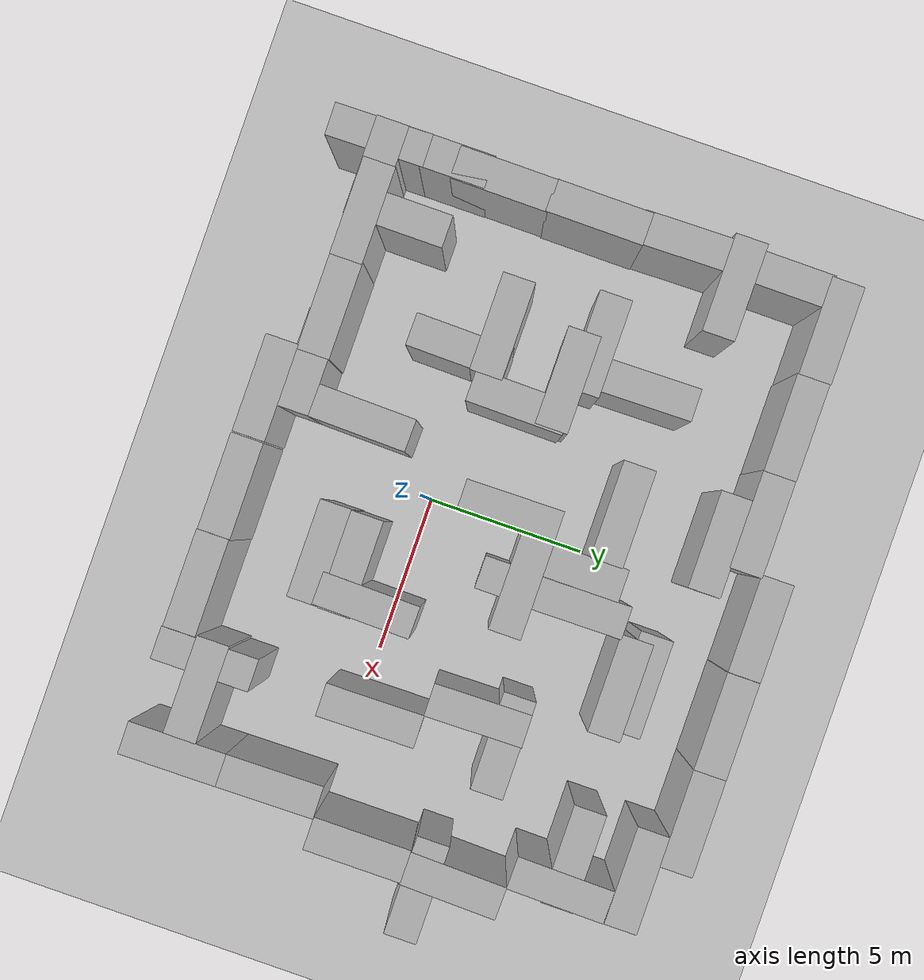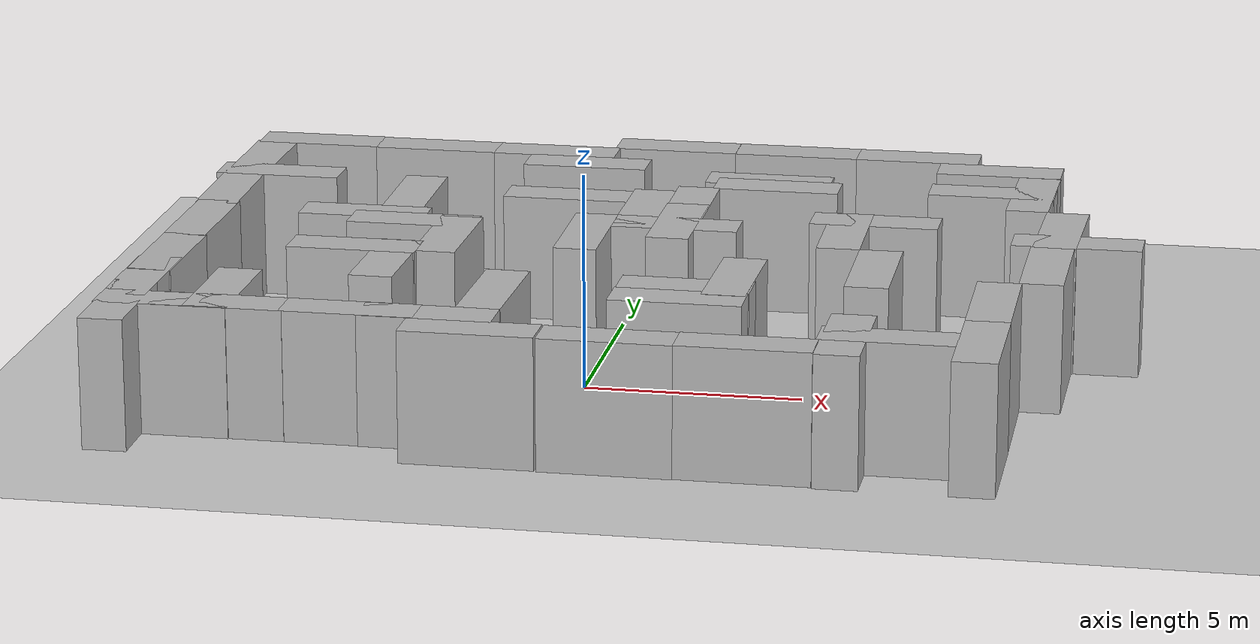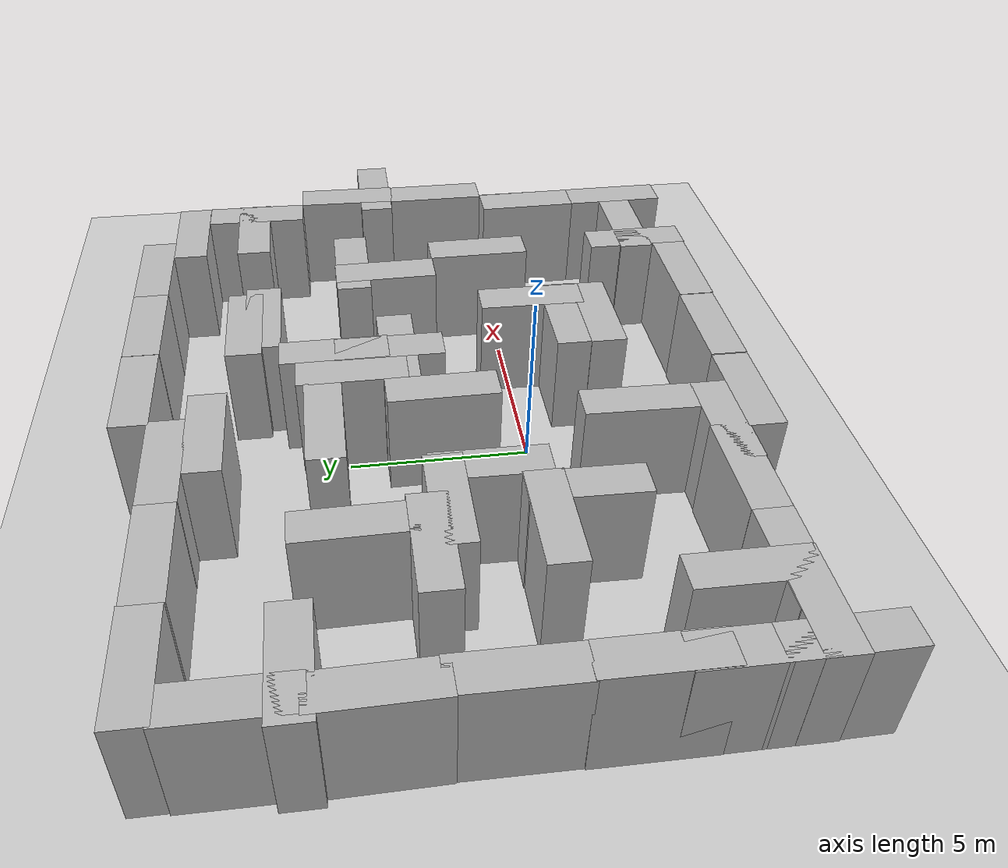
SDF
<sdf version="1.7">
 <world name="default">
  <light name="sun" type="directional">
   <pose>0 0 10 0 -0 0</pose>
   <diffuse>0.8 0.8 0.8 1</diffuse>
   <specular>0.2 0.2 0.2 1</specular>
   <attenuation>
    <range>1000</range>
    <constant>0.9</constant>
    <linear>0.01</linear>
    <quadratic>0.001</quadratic>
   </attenuation>
   <direction>-0.5 0.1 -0.9</direction>
   <spot><inner_angle>0</inner_angle><outer_angle>0</outer_angle><falloff>0</falloff></spot>
  </light>
  <model name="ground_plane">
   <static>1</static>
   <link name="link">
    <collision name="collision">
     <geometry><plane><normal>0 0 1</normal><size>100 100</size></plane></geometry>
     <surface><friction><ode><mu>100</mu><mu2>50</mu2></ode></friction></surface>
    </collision>
    <visual name="visual">
     <cast_shadows>0</cast_shadows>
     <geometry><plane><normal>0 0 1</normal><size>100 100</size></plane></geometry>
     <material>
      <script><uri>file://media/materials/scripts/gazebo.material</uri><name>Gazebo/Grey</name></script>
     </material>
    </visual>
   </link>
  </model>
  <gravity>0 0 -9.8</gravity>
  <magnetic_field>6e-06 2.3e-05 -4.2e-05</magnetic_field>
  <atmosphere type="adiabatic"/>
  <physics type="ode">
   <max_step_size>0.001</max_step_size>
   <real_time_factor>1</real_time_factor>
   <real_time_update_rate>1000</real_time_update_rate>
  </physics>
  <scene><ambient>0.4 0.4 0.4 1</ambient><background>0.7 0.7 0.7 1</background><shadows>1</shadows></scene>
  <spherical_coordinates>
   <surface_model>EARTH_WGS84</surface_model>
   <latitude_deg>0</latitude_deg>
   <longitude_deg>0</longitude_deg>
   <elevation>0</elevation>
   <heading_deg>0</heading_deg>
  </spherical_coordinates>
  <model name="brick_box_3x1x3">
   <static>1</static>
   <link name="chassis">
    <pose>0 0 1.5 0 -0 0</pose>
    <collision name="collision"><geometry><box><size>3 1 3</size></box></geometry></collision>
    <visual name="visual">
     <geometry><mesh><uri>model://brick_box_3x1x3/meshes/simple_box.dae</uri><scale>3 1 3</scale></mesh></geometry>
     <material>
      <script>
       <uri>model://brick_box_3x1x3/materials/scripts</uri>
       <uri>model://brick_box_3x1x3/materials/textures</uri>
       <name>BrickBox/Diffuse</name>
      </script>
     </material>
    </visual>
   </link>
   <pose>-8.46523 9.55339 0 0 -0 0</pose>
  </model>
  <model name="brick_box_3x1x3_0">
   <static>1</static>
   <link name="chassis">
    <pose>0 0 1.5 0 -0 0</pose>
    <collision name="collision"><geometry><box><size>3 1 3</size></box></geometry></collision>
    <visual name="visual">
     <geometry><mesh><uri>model://brick_box_3x1x3/meshes/simple_box.dae</uri><scale>3 1 3</scale></mesh></geometry>
     <material>
      <script>
       <uri>model://brick_box_3x1x3/materials/scripts</uri>
       <uri>model://brick_box_3x1x3/materials/textures</uri>
       <name>BrickBox/Diffuse</name>
      </script>
     </material>
    </visual>
   </link>
   <pose>-5.472 9.52057 0 0 -0 0</pose>
  </model>
  <model name="brick_box_3x1x3_1">
   <static>1</static>
   <link name="chassis">
    <pose>0 0 1.5 0 -0 0</pose>
    <collision name="collision"><geometry><box><size>3 1 3</size></box></geometry></collision>
    <visual name="visual">
     <geometry><mesh><uri>model://brick_box_3x1x3/meshes/simple_box.dae</uri><scale>3 1 3</scale></mesh></geometry>
     <material>
      <script>
       <uri>model://brick_box_3x1x3/materials/scripts</uri>
       <uri>model://brick_box_3x1x3/materials/textures</uri>
       <name>BrickBox/Diffuse</name>
      </script>
     </material>
    </visual>
   </link>
   <pose>-2.48829 9.51088 0 0 -0 0</pose>
  </model>
  <model name="brick_box_3x1x3_2">
   <static>1</static>
   <link name="chassis">
    <pose>0 0 1.5 0 -0 0</pose>
    <collision name="collision"><geometry><box><size>3 1 3</size></box></geometry></collision>
    <visual name="visual">
     <geometry><mesh><uri>model://brick_box_3x1x3/meshes/simple_box.dae</uri><scale>3 1 3</scale></mesh></geometry>
     <material>
      <script>
       <uri>model://brick_box_3x1x3/materials/scripts</uri>
       <uri>model://brick_box_3x1x3/materials/textures</uri>
       <name>BrickBox/Diffuse</name>
      </script>
     </material>
    </visual>
   </link>
   <pose>0.395477 10.463 0 0 -0 0</pose>
  </model>
  <model name="brick_box_3x1x3_3">
   <static>1</static>
   <link name="chassis">
    <pose>0 0 1.5 0 -0 0</pose>
    <collision name="collision"><geometry><box><size>3 1 3</size></box></geometry></collision>
    <visual name="visual">
     <geometry><mesh><uri>model://brick_box_3x1x3/meshes/simple_box.dae</uri><scale>3 1 3</scale></mesh></geometry>
     <material>
      <script>
       <uri>model://brick_box_3x1x3/materials/scripts</uri>
       <uri>model://brick_box_3x1x3/materials/textures</uri>
       <name>BrickBox/Diffuse</name>
      </script>
     </material>
    </visual>
   </link>
   <pose>3.40123 10.4557 0 0 -0 0</pose>
  </model>
  <model name="brick_box_3x1x3_4">
   <static>1</static>
   <link name="chassis">
    <pose>0 0 1.5 0 -0 0</pose>
    <collision name="collision"><geometry><box><size>3 1 3</size></box></geometry></collision>
    <visual name="visual">
     <geometry><mesh><uri>model://brick_box_3x1x3/meshes/simple_box.dae</uri><scale>3 1 3</scale></mesh></geometry>
     <material>
      <script>
       <uri>model://brick_box_3x1x3/materials/scripts</uri>
       <uri>model://brick_box_3x1x3/materials/textures</uri>
       <name>BrickBox/Diffuse</name>
      </script>
     </material>
    </visual>
   </link>
   <pose>6.38875 10.456 0 0 -0 0</pose>
  </model>
  <model name="brick_box_3x1x3_5">
   <static>1</static>
   <link name="chassis">
    <pose>0 0 1.5 0 -0 0</pose>
    <collision name="collision"><geometry><box><size>3 1 3</size></box></geometry></collision>
    <visual name="visual">
     <geometry><mesh><uri>model://brick_box_3x1x3/meshes/simple_box.dae</uri><scale>3 1 3</scale></mesh></geometry>
     <material>
      <script>
       <uri>model://brick_box_3x1x3/materials/scripts</uri>
       <uri>model://brick_box_3x1x3/materials/textures</uri>
       <name>BrickBox/Diffuse</name>
      </script>
     </material>
    </visual>
   </link>
   <pose>8.48988 9.46786 0 0 -0 0</pose>
  </model>
  <model name="brick_box_3x1x3_6">
   <static>1</static>
   <link name="chassis">
    <pose>0 0 1.5 0 -0 0</pose>
    <collision name="collision"><geometry><box><size>3 1 3</size></box></geometry></collision>
    <visual name="visual">
     <geometry><mesh><uri>model://brick_box_3x1x3/meshes/simple_box.dae</uri><scale>3 1 3</scale></mesh></geometry>
     <material>
      <script>
       <uri>model://brick_box_3x1x3/materials/scripts</uri>
       <uri>model://brick_box_3x1x3/materials/textures</uri>
       <name>BrickBox/Diffuse</name>
      </script>
     </material>
    </visual>
   </link>
   <pose>-7.28014 -4.47821 0 0 -0 0</pose>
  </model>
  <model name="brick_box_3x1x3_7">
   <static>1</static>
   <link name="chassis">
    <pose>0 0 1.5 0 -0 0</pose>
    <collision name="collision"><geometry><box><size>3 1 3</size></box></geometry></collision>
    <visual name="visual">
     <geometry><mesh><uri>model://brick_box_3x1x3/meshes/simple_box.dae</uri><scale>3 1 3</scale></mesh></geometry>
     <material>
      <script>
       <uri>model://brick_box_3x1x3/materials/scripts</uri>
       <uri>model://brick_box_3x1x3/materials/textures</uri>
       <name>BrickBox/Diffuse</name>
      </script>
     </material>
    </visual>
   </link>
   <pose>-8.73293 6.492 0 0 -0 0</pose>
  </model>
  <model name="brick_box_3x1x3_8">
   <static>1</static>
   <link name="chassis">
    <pose>0 0 1.5 0 -0 0</pose>
    <collision name="collision"><geometry><box><size>3 1 3</size></box></geometry></collision>
    <visual name="visual">
     <geometry><mesh><uri>model://brick_box_3x1x3/meshes/simple_box.dae</uri><scale>3 1 3</scale></mesh></geometry>
     <material>
      <script>
       <uri>model://brick_box_3x1x3/materials/scripts</uri>
       <uri>model://brick_box_3x1x3/materials/textures</uri>
       <name>BrickBox/Diffuse</name>
      </script>
     </material>
    </visual>
   </link>
   <pose>-8.53665 -4.49715 0 0 -0 0</pose>
  </model>
  <model name="brick_box_3x1x3_9">
   <static>1</static>
   <link name="chassis">
    <pose>0 0 1.5 0 -0 0</pose>
    <collision name="collision"><geometry><box><size>3 1 3</size></box></geometry></collision>
    <visual name="visual">
     <geometry><mesh><uri>model://brick_box_3x1x3/meshes/simple_box.dae</uri><scale>3 1 3</scale></mesh></geometry>
     <material>
      <script>
       <uri>model://brick_box_3x1x3/materials/scripts</uri>
       <uri>model://brick_box_3x1x3/materials/textures</uri>
       <name>BrickBox/Diffuse</name>
      </script>
     </material>
    </visual>
   </link>
   <pose>-5.44476 0.47068 0 0 -0 0</pose>
  </model>
  <model name="brick_box_3x1x3_10">
   <static>1</static>
   <link name="chassis">
    <pose>0 0 1.5 0 -0 0</pose>
    <collision name="collision"><geometry><box><size>3 1 3</size></box></geometry></collision>
    <visual name="visual">
     <geometry><mesh><uri>model://brick_box_3x1x3/meshes/simple_box.dae</uri><scale>3 1 3</scale></mesh></geometry>
     <material>
      <script>
       <uri>model://brick_box_3x1x3/materials/scripts</uri>
       <uri>model://brick_box_3x1x3/materials/textures</uri>
       <name>BrickBox/Diffuse</name>
      </script>
     </material>
    </visual>
   </link>
   <pose>4.53237 -5.49293 0.01205 0 -0 0</pose>
  </model>
  <model name="brick_box_3x1x3_11">
   <static>1</static>
   <link name="chassis">
    <pose>0 0 1.5 0 -0 0</pose>
    <collision name="collision"><geometry><box><size>3 1 3</size></box></geometry></collision>
    <visual name="visual">
     <geometry><mesh><uri>model://brick_box_3x1x3/meshes/simple_box.dae</uri><scale>3 1 3</scale></mesh></geometry>
     <material>
      <script>
       <uri>model://brick_box_3x1x3/materials/scripts</uri>
       <uri>model://brick_box_3x1x3/materials/textures</uri>
       <name>BrickBox/Diffuse</name>
      </script>
     </material>
    </visual>
   </link>
   <pose>1.55384 -5.47393 -0.00317 0 -0 0</pose>
  </model>
  <model name="brick_box_3x1x3_12">
   <static>1</static>
   <link name="chassis">
    <pose>0 0 1.5 0 -0 0</pose>
    <collision name="collision"><geometry><box><size>3 1 3</size></box></geometry></collision>
    <visual name="visual">
     <geometry><mesh><uri>model://brick_box_3x1x3/meshes/simple_box.dae</uri><scale>3 1 3</scale></mesh></geometry>
     <material>
      <script>
       <uri>model://brick_box_3x1x3/materials/scripts</uri>
       <uri>model://brick_box_3x1x3/materials/textures</uri>
       <name>BrickBox/Diffuse</name>
      </script>
     </material>
    </visual>
   </link>
   <pose>-4.58886 2.78847 0 0 -0 0</pose>
  </model>
  <model name="brick_box_3x1x3_13">
   <static>1</static>
   <link name="chassis">
    <pose>0 0 1.5 0 -0 0</pose>
    <collision name="collision"><geometry><box><size>3 1 3</size></box></geometry></collision>
    <visual name="visual">
     <geometry><mesh><uri>model://brick_box_3x1x3/meshes/simple_box.dae</uri><scale>3 1 3</scale></mesh></geometry>
     <material>
      <script>
       <uri>model://brick_box_3x1x3/materials/scripts</uri>
       <uri>model://brick_box_3x1x3/materials/textures</uri>
       <name>BrickBox/Diffuse</name>
      </script>
     </material>
    </visual>
   </link>
   <pose>7.46092 -4.46594 0 0 -0 0</pose>
  </model>
  <model name="brick_box_3x1x3_14">
   <static>1</static>
   <link name="chassis">
    <pose>0 0 1.5 0 -0 0</pose>
    <collision name="collision"><geometry><box><size>3 1 3</size></box></geometry></collision>
    <visual name="visual">
     <geometry><mesh><uri>model://brick_box_3x1x3/meshes/simple_box.dae</uri><scale>3 1 3</scale></mesh></geometry>
     <material>
      <script>
       <uri>model://brick_box_3x1x3/materials/scripts</uri>
       <uri>model://brick_box_3x1x3/materials/textures</uri>
       <name>BrickBox/Diffuse</name>
      </script>
     </material>
    </visual>
   </link>
   <pose>-1.48677 -5.45639 0 0 -0 0</pose>
  </model>
  <model name="brick_box_3x1x3_15">
   <static>1</static>
   <link name="chassis">
    <pose>0 0 1.5 0 -0 0</pose>
    <collision name="collision"><geometry><box><size>3 1 3</size></box></geometry></collision>
    <visual name="visual">
     <geometry><mesh><uri>model://brick_box_3x1x3/meshes/simple_box.dae</uri><scale>3 1 3</scale></mesh></geometry>
     <material>
      <script>
       <uri>model://brick_box_3x1x3/materials/scripts</uri>
       <uri>model://brick_box_3x1x3/materials/textures</uri>
       <name>BrickBox/Diffuse</name>
      </script>
     </material>
    </visual>
   </link>
   <pose>-5.87977 3.3047 0 0 -0 0</pose>
  </model>
  <model name="brick_box_3x1x3_16">
   <static>1</static>
   <link name="chassis">
    <pose>0 0 1.5 0 -0 0</pose>
    <collision name="collision"><geometry><box><size>3 1 3</size></box></geometry></collision>
    <visual name="visual">
     <geometry><mesh><uri>model://brick_box_3x1x3/meshes/simple_box.dae</uri><scale>3 1 3</scale></mesh></geometry>
     <material>
      <script>
       <uri>model://brick_box_3x1x3/materials/scripts</uri>
       <uri>model://brick_box_3x1x3/materials/textures</uri>
       <name>BrickBox/Diffuse</name>
      </script>
     </material>
    </visual>
   </link>
   <pose>-1.43176 5.58738 0 0 -0 0</pose>
  </model>
  <model name="brick_box_3x1x3_17">
   <static>1</static>
   <link name="chassis">
    <pose>0 0 1.5 0 -0 0</pose>
    <collision name="collision"><geometry><box><size>3 1 3</size></box></geometry></collision>
    <visual name="visual">
     <geometry><mesh><uri>model://brick_box_3x1x3/meshes/simple_box.dae</uri><scale>3 1 3</scale></mesh></geometry>
     <material>
      <script>
       <uri>model://brick_box_3x1x3/materials/scripts</uri>
       <uri>model://brick_box_3x1x3/materials/textures</uri>
       <name>BrickBox/Diffuse</name>
      </script>
     </material>
    </visual>
   </link>
   <pose>-3.52779 1.66214 0 0 -0 1.55943</pose>
  </model>
  <model name="brick_box_3x1x3_18">
   <static>1</static>
   <link name="chassis">
    <pose>0 0 1.5 0 -0 0</pose>
    <collision name="collision"><geometry><box><size>3 1 3</size></box></geometry></collision>
    <visual name="visual">
     <geometry><mesh><uri>model://brick_box_3x1x3/meshes/simple_box.dae</uri><scale>3 1 3</scale></mesh></geometry>
     <material>
      <script>
       <uri>model://brick_box_3x1x3/materials/scripts</uri>
       <uri>model://brick_box_3x1x3/materials/textures</uri>
       <name>BrickBox/Diffuse</name>
      </script>
     </material>
    </visual>
   </link>
   <pose>5.4779 3.52288 0 0 -0 1.58625</pose>
  </model>
  <model name="brick_box_3x1x3_19">
   <static>1</static>
   <link name="chassis">
    <pose>0 0 1.5 0 -0 0</pose>
    <collision name="collision"><geometry><box><size>3 1 3</size></box></geometry></collision>
    <visual name="visual">
     <geometry><mesh><uri>model://brick_box_3x1x3/meshes/simple_box.dae</uri><scale>3 1 3</scale></mesh></geometry>
     <material>
      <script>
       <uri>model://brick_box_3x1x3/materials/scripts</uri>
       <uri>model://brick_box_3x1x3/materials/textures</uri>
       <name>BrickBox/Diffuse</name>
      </script>
     </material>
    </visual>
   </link>
   <pose>-0.432442 2.4609 -9e-06 9e-06 0.000951 -1.56124</pose>
  </model>
  <model name="brick_box_3x1x3_20">
   <static>1</static>
   <link name="chassis">
    <pose>0 0 1.5 0 -0 0</pose>
    <collision name="collision"><geometry><box><size>3 1 3</size></box></geometry></collision>
    <visual name="visual">
     <geometry><mesh><uri>model://brick_box_3x1x3/meshes/simple_box.dae</uri><scale>3 1 3</scale></mesh></geometry>
     <material>
      <script>
       <uri>model://brick_box_3x1x3/materials/scripts</uri>
       <uri>model://brick_box_3x1x3/materials/textures</uri>
       <name>BrickBox/Diffuse</name>
      </script>
     </material>
    </visual>
   </link>
   <pose>9.45439 -4.51841 0 0 -0 1.57734</pose>
  </model>
  <model name="brick_box_3x1x3_21">
   <static>1</static>
   <link name="chassis">
    <pose>0 0 1.5 0 -0 0</pose>
    <collision name="collision"><geometry><box><size>3 1 3</size></box></geometry></collision>
    <visual name="visual">
     <geometry><mesh><uri>model://brick_box_3x1x3/meshes/simple_box.dae</uri><scale>3 1 3</scale></mesh></geometry>
     <material>
      <script>
       <uri>model://brick_box_3x1x3/materials/scripts</uri>
       <uri>model://brick_box_3x1x3/materials/textures</uri>
       <name>BrickBox/Diffuse</name>
      </script>
     </material>
    </visual>
   </link>
   <pose>9.42032 -1.5245 0 0 -0 1.58366</pose>
  </model>
  <model name="brick_box_3x1x3_22">
   <static>1</static>
   <link name="chassis">
    <pose>0 0 1.5 0 -0 0</pose>
    <collision name="collision"><geometry><box><size>3 1 3</size></box></geometry></collision>
    <visual name="visual">
     <geometry><mesh><uri>model://brick_box_3x1x3/meshes/simple_box.dae</uri><scale>3 1 3</scale></mesh></geometry>
     <material>
      <script>
       <uri>model://brick_box_3x1x3/materials/scripts</uri>
       <uri>model://brick_box_3x1x3/materials/textures</uri>
       <name>BrickBox/Diffuse</name>
      </script>
     </material>
    </visual>
   </link>
   <pose>10.3225 1.48345 0 0 -0 1.5723</pose>
  </model>
  <model name="brick_box_3x1x3_23">
   <static>1</static>
   <link name="chassis">
    <pose>0 0 1.5 0 -0 0</pose>
    <collision name="collision"><geometry><box><size>3 1 3</size></box></geometry></collision>
    <visual name="visual">
     <geometry><mesh><uri>model://brick_box_3x1x3/meshes/simple_box.dae</uri><scale>3 1 3</scale></mesh></geometry>
     <material>
      <script>
       <uri>model://brick_box_3x1x3/materials/scripts</uri>
       <uri>model://brick_box_3x1x3/materials/textures</uri>
       <name>BrickBox/Diffuse</name>
      </script>
     </material>
    </visual>
   </link>
   <pose>10.3931 4.44675 0 0 -0 1.54705</pose>
  </model>
  <model name="brick_box_3x1x3_24">
   <static>1</static>
   <link name="chassis">
    <pose>0 0 1.5 0 -0 0</pose>
    <collision name="collision"><geometry><box><size>3 1 3</size></box></geometry></collision>
    <visual name="visual">
     <geometry><mesh><uri>model://brick_box_3x1x3/meshes/simple_box.dae</uri><scale>3 1 3</scale></mesh></geometry>
     <material>
      <script>
       <uri>model://brick_box_3x1x3/materials/scripts</uri>
       <uri>model://brick_box_3x1x3/materials/textures</uri>
       <name>BrickBox/Diffuse</name>
      </script>
     </material>
    </visual>
   </link>
   <pose>9.47912 7.45795 0 0 -0 1.55575</pose>
  </model>
  <model name="brick_box_3x1x3_25">
   <static>1</static>
   <link name="chassis">
    <pose>0 0 1.5 0 -0 0</pose>
    <collision name="collision"><geometry><box><size>3 1 3</size></box></geometry></collision>
    <visual name="visual">
     <geometry><mesh><uri>model://brick_box_3x1x3/meshes/simple_box.dae</uri><scale>3 1 3</scale></mesh></geometry>
     <material>
      <script>
       <uri>model://brick_box_3x1x3/materials/scripts</uri>
       <uri>model://brick_box_3x1x3/materials/textures</uri>
       <name>BrickBox/Diffuse</name>
      </script>
     </material>
    </visual>
   </link>
   <pose>-7.50483 -3.43801 0 0 -0 1.56732</pose>
  </model>
  <model name="brick_box_3x1x3_26">
   <static>1</static>
   <link name="chassis">
    <pose>0 0 1.5 0 -0 0</pose>
    <collision name="collision"><geometry><box><size>3 1 3</size></box></geometry></collision>
    <visual name="visual">
     <geometry><mesh><uri>model://brick_box_3x1x3/meshes/simple_box.dae</uri><scale>3 1 3</scale></mesh></geometry>
     <material>
      <script>
       <uri>model://brick_box_3x1x3/materials/scripts</uri>
       <uri>model://brick_box_3x1x3/materials/textures</uri>
       <name>BrickBox/Diffuse</name>
      </script>
     </material>
    </visual>
   </link>
   <pose>-9.51453 -4.75402 0 0 -0 1.585</pose>
  </model>
  <model name="brick_box_3x1x3_27">
   <static>1</static>
   <link name="chassis">
    <pose>0 0 1.5 0 -0 0</pose>
    <collision name="collision"><geometry><box><size>3 1 3</size></box></geometry></collision>
    <visual name="visual">
     <geometry><mesh><uri>model://brick_box_3x1x3/meshes/simple_box.dae</uri><scale>3 1 3</scale></mesh></geometry>
     <material>
      <script>
       <uri>model://brick_box_3x1x3/materials/scripts</uri>
       <uri>model://brick_box_3x1x3/materials/textures</uri>
       <name>BrickBox/Diffuse</name>
      </script>
     </material>
    </visual>
   </link>
   <pose>-9.54809 -0.899517 0.002837 0.016451 0.002304 1.56624</pose>
  </model>
  <model name="brick_box_3x1x3_28">
   <static>1</static>
   <link name="chassis">
    <pose>0 0 1.5 0 -0 0</pose>
    <collision name="collision"><geometry><box><size>3 1 3</size></box></geometry></collision>
    <visual name="visual">
     <geometry><mesh><uri>model://brick_box_3x1x3/meshes/simple_box.dae</uri><scale>3 1 3</scale></mesh></geometry>
     <material>
      <script>
       <uri>model://brick_box_3x1x3/materials/scripts</uri>
       <uri>model://brick_box_3x1x3/materials/textures</uri>
       <name>BrickBox/Diffuse</name>
      </script>
     </material>
    </visual>
   </link>
   <pose>-9.49995 2.05036 0 0 -0 1.56412</pose>
  </model>
  <model name="brick_box_3x1x3_29">
   <static>1</static>
   <link name="chassis">
    <pose>0 0 1.5 0 -0 0</pose>
    <collision name="collision"><geometry><box><size>3 1 3</size></box></geometry></collision>
    <visual name="visual">
     <geometry><mesh><uri>model://brick_box_3x1x3/meshes/simple_box.dae</uri><scale>3 1 3</scale></mesh></geometry>
     <material>
      <script>
       <uri>model://brick_box_3x1x3/materials/scripts</uri>
       <uri>model://brick_box_3x1x3/materials/textures</uri>
       <name>BrickBox/Diffuse</name>
      </script>
     </material>
    </visual>
   </link>
   <pose>-9.53782 4.81396 0 0 -0 1.58649</pose>
  </model>
  <model name="brick_box_3x1x3_30">
   <static>1</static>
   <link name="chassis">
    <pose>0 0 1.5 0 -0 0</pose>
    <collision name="collision"><geometry><box><size>3 1 3</size></box></geometry></collision>
    <visual name="visual">
     <geometry><mesh><uri>model://brick_box_3x1x3/meshes/simple_box.dae</uri><scale>3 1 3</scale></mesh></geometry>
     <material>
      <script>
       <uri>model://brick_box_3x1x3/materials/scripts</uri>
       <uri>model://brick_box_3x1x3/materials/textures</uri>
       <name>BrickBox/Diffuse</name>
      </script>
     </material>
    </visual>
   </link>
   <pose>-9.51638 7.65972 0 0 -0 1.56571</pose>
  </model>
  <model name="brick_box_3x1x3_31">
   <static>1</static>
   <link name="chassis">
    <pose>0 0 1.5 0 -0 0</pose>
    <collision name="collision"><geometry><box><size>3 1 3</size></box></geometry></collision>
    <visual name="visual">
     <geometry><mesh><uri>model://brick_box_3x1x3/meshes/simple_box.dae</uri><scale>3 1 3</scale></mesh></geometry>
     <material>
      <script>
       <uri>model://brick_box_3x1x3/materials/scripts</uri>
       <uri>model://brick_box_3x1x3/materials/textures</uri>
       <name>BrickBox/Diffuse</name>
      </script>
     </material>
    </visual>
   </link>
   <pose>-9.53488 -2.84491 0 0 -0 1.57198</pose>
  </model>
  <model name="brick_box_3x1x3_32">
   <static>1</static>
   <link name="chassis">
    <pose>0 0 1.5 0 -0 0</pose>
    <collision name="collision"><geometry><box><size>3 1 3</size></box></geometry></collision>
    <visual name="visual">
     <geometry><mesh><uri>model://brick_box_3x1x3/meshes/simple_box.dae</uri><scale>3 1 3</scale></mesh></geometry>
     <material>
      <script>
       <uri>model://brick_box_3x1x3/materials/scripts</uri>
       <uri>model://brick_box_3x1x3/materials/textures</uri>
       <name>BrickBox/Diffuse</name>
      </script>
     </material>
    </visual>
   </link>
   <pose>2.55085 -1.42573 0 0 -0 0</pose>
  </model>
  <model name="brick_box_3x1x3_33">
   <static>1</static>
   <link name="chassis">
    <pose>0 0 1.5 0 -0 0</pose>
    <collision name="collision"><geometry><box><size>3 1 3</size></box></geometry></collision>
    <visual name="visual">
     <geometry><mesh><uri>model://brick_box_3x1x3/meshes/simple_box.dae</uri><scale>3 1 3</scale></mesh></geometry>
     <material>
      <script>
       <uri>model://brick_box_3x1x3/materials/scripts</uri>
       <uri>model://brick_box_3x1x3/materials/textures</uri>
       <name>BrickBox/Diffuse</name>
      </script>
     </material>
    </visual>
   </link>
   <pose>-4.47913 -0.512061 0 0 -0 1.55582</pose>
  </model>
  <model name="brick_box_3x1x3_34">
   <static>1</static>
   <link name="chassis">
    <pose>0 0 1.5 0 -0 0</pose>
    <collision name="collision"><geometry><box><size>3 1 3</size></box></geometry></collision>
    <visual name="visual">
     <geometry><mesh><uri>model://brick_box_3x1x3/meshes/simple_box.dae</uri><scale>3 1 3</scale></mesh></geometry>
     <material>
      <script>
       <uri>model://brick_box_3x1x3/materials/scripts</uri>
       <uri>model://brick_box_3x1x3/materials/textures</uri>
       <name>BrickBox/Diffuse</name>
      </script>
     </material>
    </visual>
   </link>
   <pose>-4.35633 -4.47256 0 0 -0 0</pose>
  </model>
  <model name="brick_box_3x1x3_35">
   <static>1</static>
   <link name="chassis">
    <pose>0 0 1.5 0 -0 0</pose>
    <collision name="collision"><geometry><box><size>3 1 3</size></box></geometry></collision>
    <visual name="visual">
     <geometry><mesh><uri>model://brick_box_3x1x3/meshes/simple_box.dae</uri><scale>3 1 3</scale></mesh></geometry>
     <material>
      <script>
       <uri>model://brick_box_3x1x3/materials/scripts</uri>
       <uri>model://brick_box_3x1x3/materials/textures</uri>
       <name>BrickBox/Diffuse</name>
      </script>
     </material>
    </visual>
   </link>
   <pose>1.5103 3.47128 0 0 -0 0</pose>
  </model>
  <model name="brick_box_3x1x3_36">
   <static>1</static>
   <link name="chassis">
    <pose>0 0 1.5 0 -0 0</pose>
    <collision name="collision"><geometry><box><size>3 1 3</size></box></geometry></collision>
    <visual name="visual">
     <geometry><mesh><uri>model://brick_box_3x1x3/meshes/simple_box.dae</uri><scale>3 1 3</scale></mesh></geometry>
     <material>
      <script>
       <uri>model://brick_box_3x1x3/materials/scripts</uri>
       <uri>model://brick_box_3x1x3/materials/textures</uri>
       <name>BrickBox/Diffuse</name>
      </script>
     </material>
    </visual>
   </link>
   <pose>6.51411 0.553133 0 0 -0 1.58157</pose>
  </model>
  <model name="brick_box_3x1x3_37">
   <static>1</static>
   <link name="chassis">
    <pose>0 0 1.5 0 -0 0</pose>
    <collision name="collision"><geometry><box><size>3 1 3</size></box></geometry></collision>
    <visual name="visual">
     <geometry><mesh><uri>model://brick_box_3x1x3/meshes/simple_box.dae</uri><scale>3 1 3</scale></mesh></geometry>
     <material>
      <script>
       <uri>model://brick_box_3x1x3/materials/scripts</uri>
       <uri>model://brick_box_3x1x3/materials/textures</uri>
       <name>BrickBox/Diffuse</name>
      </script>
     </material>
    </visual>
   </link>
   <pose>6.06666 4.50314 0 0 -0 0</pose>
  </model>
  <model name="brick_box_3x1x3_38">
   <static>1</static>
   <link name="chassis">
    <pose>0 0 1.5 0 -0 0</pose>
    <collision name="collision"><geometry><box><size>3 1 3</size></box></geometry></collision>
    <visual name="visual">
     <geometry><mesh><uri>model://brick_box_3x1x3/meshes/simple_box.dae</uri><scale>3 1 3</scale></mesh></geometry>
     <material>
      <script>
       <uri>model://brick_box_3x1x3/materials/scripts</uri>
       <uri>model://brick_box_3x1x3/materials/textures</uri>
       <name>BrickBox/Diffuse</name>
      </script>
     </material>
    </visual>
   </link>
   <pose>0.54075 4.78948 0 0 -0 1.57207</pose>
  </model>
  <model name="brick_box_3x1x3_39">
   <static>1</static>
   <link name="chassis">
    <pose>0 0 1.5 0 -0 0</pose>
    <collision name="collision"><geometry><box><size>3 1 3</size></box></geometry></collision>
    <visual name="visual">
     <geometry><mesh><uri>model://brick_box_3x1x3/meshes/simple_box.dae</uri><scale>3 1 3</scale></mesh></geometry>
     <material>
      <script>
       <uri>model://brick_box_3x1x3/materials/scripts</uri>
       <uri>model://brick_box_3x1x3/materials/textures</uri>
       <name>BrickBox/Diffuse</name>
      </script>
     </material>
    </visual>
   </link>
   <pose>-1.58012 -2.50664 0 0 -0 1.55049</pose>
  </model>
  <model name="brick_box_3x1x3_40">
   <static>1</static>
   <link name="chassis">
    <pose>0 0 1.5 0 -0 0</pose>
    <collision name="collision"><geometry><box><size>3 1 3</size></box></geometry></collision>
    <visual name="visual">
     <geometry><mesh><uri>model://brick_box_3x1x3/meshes/simple_box.dae</uri><scale>3 1 3</scale></mesh></geometry>
     <material>
      <script>
       <uri>model://brick_box_3x1x3/materials/scripts</uri>
       <uri>model://brick_box_3x1x3/materials/textures</uri>
       <name>BrickBox/Diffuse</name>
      </script>
     </material>
    </visual>
   </link>
   <pose>6.53742 -4.52703 0 0 -0 1.57244</pose>
  </model>
  <model name="brick_box_3x1x3_41">
   <static>1</static>
   <link name="chassis">
    <pose>0 0 1.5 0 -0 0</pose>
    <collision name="collision"><geometry><box><size>3 1 3</size></box></geometry></collision>
    <visual name="visual">
     <geometry><mesh><uri>model://brick_box_3x1x3/meshes/simple_box.dae</uri><scale>3 1 3</scale></mesh></geometry>
     <material>
      <script>
       <uri>model://brick_box_3x1x3/materials/scripts</uri>
       <uri>model://brick_box_3x1x3/materials/textures</uri>
       <name>BrickBox/Diffuse</name>
      </script>
     </material>
    </visual>
   </link>
   <pose>8.5002 7.51863 0 0 -0 0</pose>
  </model>
  <model name="brick_box_3x1x3_42">
   <static>1</static>
   <link name="chassis">
    <pose>0 0 1.5 0 -0 0</pose>
    <collision name="collision"><geometry><box><size>3 1 3</size></box></geometry></collision>
    <visual name="visual">
     <geometry><mesh><uri>model://brick_box_3x1x3/meshes/simple_box.dae</uri><scale>3 1 3</scale></mesh></geometry>
     <material>
      <script>
       <uri>model://brick_box_3x1x3/materials/scripts</uri>
       <uri>model://brick_box_3x1x3/materials/textures</uri>
       <name>BrickBox/Diffuse</name>
      </script>
     </material>
    </visual>
   </link>
   <pose>3.52535 -0.615928 4e-06 3.7e-05 -0.002339 -1.58655</pose>
  </model>
  <model name="brick_box_3x1x3_43">
   <static>1</static>
   <link name="chassis">
    <pose>0 0 1.5 0 -0 0</pose>
    <collision name="collision"><geometry><box><size>3 1 3</size></box></geometry></collision>
    <visual name="visual">
     <geometry><mesh><uri>model://brick_box_3x1x3/meshes/simple_box.dae</uri><scale>3 1 3</scale></mesh></geometry>
     <material>
      <script>
       <uri>model://brick_box_3x1x3/materials/scripts</uri>
       <uri>model://brick_box_3x1x3/materials/textures</uri>
       <name>BrickBox/Diffuse</name>
      </script>
     </material>
    </visual>
   </link>
   <pose>1.54122 5.22879 0 0 -0 1.5782</pose>
  </model>
  <model name="brick_box_3x1x3_44">
   <static>1</static>
   <link name="chassis">
    <pose>0 0 1.5 0 -0 0</pose>
    <collision name="collision"><geometry><box><size>3 1 3</size></box></geometry></collision>
    <visual name="visual">
     <geometry><mesh><uri>model://brick_box_3x1x3/meshes/simple_box.dae</uri><scale>3 1 3</scale></mesh></geometry>
     <material>
      <script>
       <uri>model://brick_box_3x1x3/materials/scripts</uri>
       <uri>model://brick_box_3x1x3/materials/textures</uri>
       <name>BrickBox/Diffuse</name>
      </script>
     </material>
    </visual>
   </link>
   <pose>-1.54103 8.55228 0 0 -0 0</pose>
  </model>
  <model name="brick_box_3x1x3_45">
   <static>1</static>
   <link name="chassis">
    <pose>0 0 1.5 0 -0 0</pose>
    <collision name="collision"><geometry><box><size>3 1 3</size></box></geometry></collision>
    <visual name="visual">
     <geometry><mesh><uri>model://brick_box_3x1x3/meshes/simple_box.dae</uri><scale>3 1 3</scale></mesh></geometry>
     <material>
      <script>
       <uri>model://brick_box_3x1x3/materials/scripts</uri>
       <uri>model://brick_box_3x1x3/materials/textures</uri>
       <name>BrickBox/Diffuse</name>
      </script>
     </material>
    </visual>
   </link>
   <pose>-5.10057 5.06192 0 0 -0 1.58448</pose>
  </model>
  <model name="brick_box_3x1x3_46">
   <static>1</static>
   <link name="chassis">
    <pose>0 0 1.5 0 -0 0</pose>
    <collision name="collision"><geometry><box><size>3 1 3</size></box></geometry></collision>
    <visual name="visual">
     <geometry><mesh><uri>model://brick_box_3x1x3/meshes/simple_box.dae</uri><scale>3 1 3</scale></mesh></geometry>
     <material>
      <script>
       <uri>model://brick_box_3x1x3/materials/scripts</uri>
       <uri>model://brick_box_3x1x3/materials/textures</uri>
       <name>BrickBox/Diffuse</name>
      </script>
     </material>
    </visual>
   </link>
   <pose>2.53099 -2.38277 0 0 -0 0</pose>
  </model>
  <model name="brick_box_3x1x3_47">
   <static>1</static>
   <link name="chassis">
    <pose>0 0 1.5 0 -0 0</pose>
    <collision name="collision"><geometry><box><size>3 1 3</size></box></geometry></collision>
    <visual name="visual">
     <geometry><mesh><uri>model://brick_box_3x1x3/meshes/simple_box.dae</uri><scale>3 1 3</scale></mesh></geometry>
     <material>
      <script>
       <uri>model://brick_box_3x1x3/materials/scripts</uri>
       <uri>model://brick_box_3x1x3/materials/textures</uri>
       <name>BrickBox/Diffuse</name>
      </script>
     </material>
    </visual>
   </link>
   <pose>10.8535 3.5039 0 0 -0 0</pose>
  </model>
  <model name="brick_box_3x1x3_48">
   <static>1</static>
   <link name="chassis">
    <pose>0 0 1.5 0 -0 0</pose>
    <collision name="collision"><geometry><box><size>3 1 3</size></box></geometry></collision>
    <visual name="visual">
     <geometry><mesh><uri>model://brick_box_3x1x3/meshes/simple_box.dae</uri><scale>3 1 3</scale></mesh></geometry>
     <material>
      <script>
       <uri>model://brick_box_3x1x3/materials/scripts</uri>
       <uri>model://brick_box_3x1x3/materials/textures</uri>
       <name>BrickBox/Diffuse</name>
      </script>
     </material>
    </visual>
   </link>
   <pose>1.51103 3.7025 0 0 -0 1.56793</pose>
  </model>
  <model name="brick_box_3x1x3_49">
   <static>1</static>
   <link name="chassis">
    <pose>0 0 1.5 0 -0 0</pose>
    <collision name="collision"><geometry><box><size>3 1 3</size></box></geometry></collision>
    <visual name="visual">
     <geometry><mesh><uri>model://brick_box_3x1x3/meshes/simple_box.dae</uri><scale>3 1 3</scale></mesh></geometry>
     <material>
      <script>
       <uri>model://brick_box_3x1x3/materials/scripts</uri>
       <uri>model://brick_box_3x1x3/materials/textures</uri>
       <name>BrickBox/Diffuse</name>
      </script>
     </material>
    </visual>
   </link>
   <pose>3.36714 7.17537 0 0 -0 0</pose>
  </model>
  <model name="brick_box_3x1x3_50">
   <static>1</static>
   <link name="chassis">
    <pose>0 0 1.5 0 -0 0</pose>
    <collision name="collision"><geometry><box><size>3 1 3</size></box></geometry></collision>
    <visual name="visual">
     <geometry><mesh><uri>model://brick_box_3x1x3/meshes/simple_box.dae</uri><scale>3 1 3</scale></mesh></geometry>
     <material>
      <script>
       <uri>model://brick_box_3x1x3/materials/scripts</uri>
       <uri>model://brick_box_3x1x3/materials/textures</uri>
       <name>BrickBox/Diffuse</name>
      </script>
     </material>
    </visual>
   </link>
   <pose>-2.61331 -4.49754 0 0 -0 0</pose>
  </model>
  <model name="brick_box_3x1x3_51">
   <static>1</static>
   <link name="chassis">
    <pose>0 0 1.5 0 -0 0</pose>
    <collision name="collision"><geometry><box><size>3 1 3</size></box></geometry></collision>
    <visual name="visual">
     <geometry><mesh><uri>model://brick_box_3x1x3/meshes/simple_box.dae</uri><scale>3 1 3</scale></mesh></geometry>
     <material>
      <script>
       <uri>model://brick_box_3x1x3/materials/scripts</uri>
       <uri>model://brick_box_3x1x3/materials/textures</uri>
       <name>BrickBox/Diffuse</name>
      </script>
     </material>
    </visual>
   </link>
   <pose>3.08718 7.68784 0 0 -0 0</pose>
  </model>
 </world>
</sdf>
